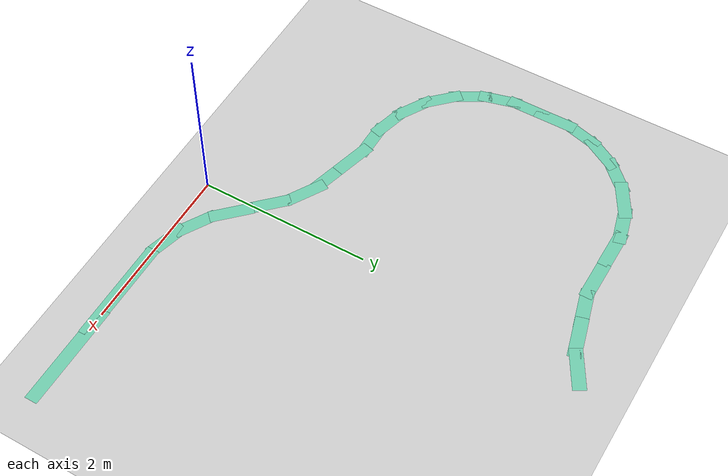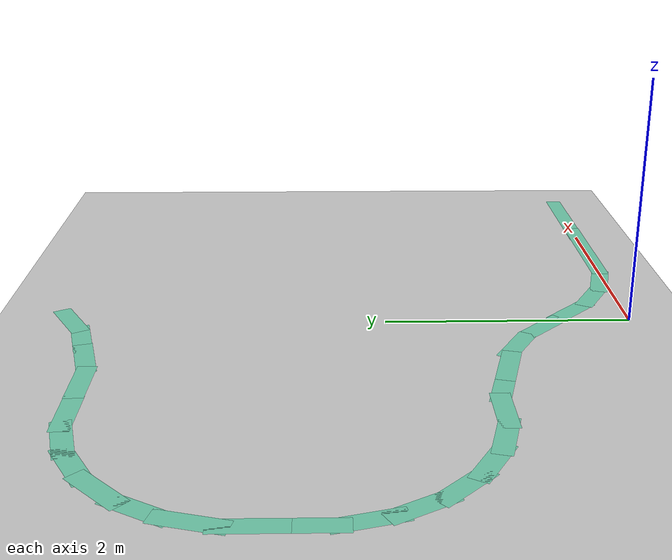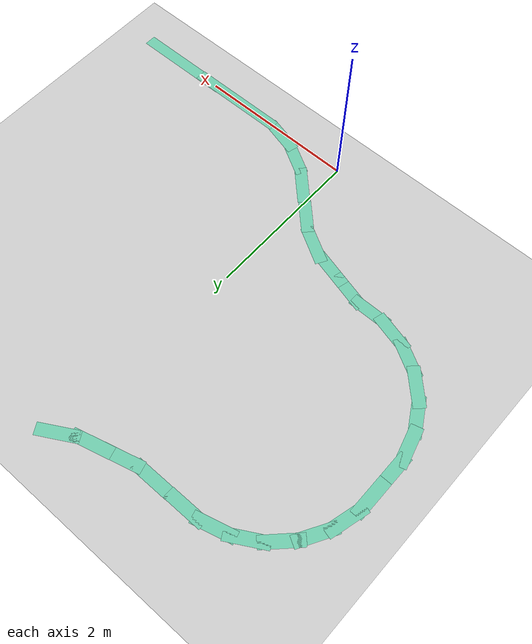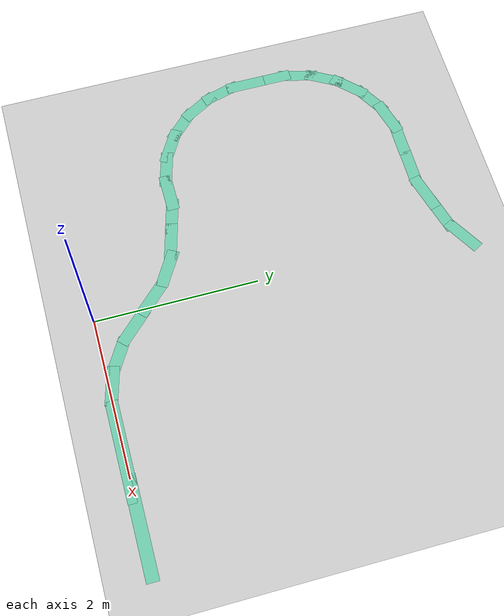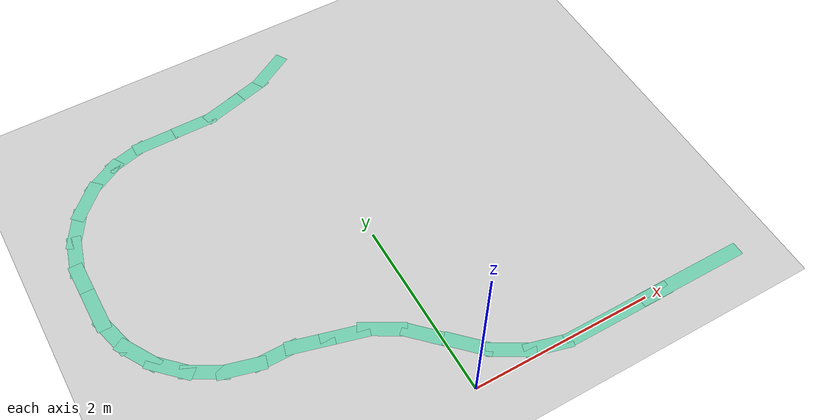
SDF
<sdf version="1.6">
 <world name="default">
  <model name="ground_plane">
   <static>1</static>
   <link name="link">
    <collision name="collision">
     <geometry><plane><normal>0 0 1</normal><size>100 100</size></plane></geometry>
     <surface><friction><ode><mu>100</mu><mu2>50</mu2></ode></friction></surface>
    </collision>
    <visual name="visual">
     <cast_shadows>0</cast_shadows>
     <geometry><plane><normal>0 0 1</normal><size>100 100</size></plane></geometry>
     <material>
      <script><uri>file://media/materials/scripts/gazebo.material</uri><name>Gazebo/Grey</name></script>
     </material>
    </visual>
   </link>
  </model>
  <model name="pomdp_path">
   <link name="Wall_100_clone_0">
    <pose>-8.04297 8.50296 0 0 -0 2.618</pose>
    <visual name="Wall_100_Visual">
     <pose>0 0 0.0001 0 -0 0</pose>
     <geometry><box><size>0.5 0.15 0</size></box></geometry>
     <material>
      <script><uri>file://media/materials/scripts/gazebo.material</uri><name>Gazebo/Grey</name></script>
      <ambient>0.435294 0.796078 0.67451 1</ambient>
      <shader type="pixel"/>
     </material>
     <meta><layer>0</layer></meta>
    </visual>
    <collision name="Wall_100_Collision">
     <pose>0 0 0.0001 0 -0 0</pose>
     <geometry><box><size>0.5 0.15 0</size></box></geometry>
     <surface>
      <friction>
       <ode><mu>1</mu><mu2>1</mu2><fdir1>0 0 0</fdir1><slip1>0</slip1><slip2>0</slip2></ode>
       <torsional>
        <coefficient>1</coefficient>
        <patch_radius>0</patch_radius>
        <surface_radius>0</surface_radius>
        <use_patch_radius>1</use_patch_radius>
        <ode><slip>0</slip></ode>
       </torsional>
      </friction>
      <bounce><restitution_coefficient>0</restitution_coefficient><threshold>1e+06</threshold></bounce>
      <contact>
       <collide_without_contact>0</collide_without_contact>
       <collide_without_contact_bitmask>1</collide_without_contact_bitmask>
       <collide_bitmask>1</collide_bitmask>
       <ode>
        <soft_cfm>0</soft_cfm>
        <soft_erp>0.2</soft_erp>
        <kp>1e+13</kp>
        <kd>1</kd>
        <max_vel>0.01</max_vel>
        <min_depth>0</min_depth>
       </ode>
       <bullet>
        <split_impulse>1</split_impulse>
        <split_impulse_penetration_threshold>-0.01</split_impulse_penetration_threshold>
        <soft_cfm>0</soft_cfm>
        <soft_erp>0.2</soft_erp>
        <kp>1e+13</kp>
        <kd>1</kd>
       </bullet>
      </contact>
     </surface>
    </collision>
   </link>
   <link name="Wall_101">
    <pose>-7.69538 8.38063 0 0 0 -0.261799</pose>
    <visual name="Wall_101_Visual">
     <pose>0 0 0.0001 0 -0 0</pose>
     <geometry><box><size>0.5 0.15 0</size></box></geometry>
     <material>
      <script><uri>file://media/materials/scripts/gazebo.material</uri><name>Gazebo/Grey</name></script>
      <ambient>0.435294 0.796078 0.67451 1</ambient>
      <shader type="pixel"/>
     </material>
     <meta><layer>0</layer></meta>
    </visual>
    <collision name="Wall_101_Collision">
     <pose>0 0 0.0001 0 -0 0</pose>
     <geometry><box><size>0.5 0.15 0</size></box></geometry>
     <surface>
      <friction>
       <ode><mu>1</mu><mu2>1</mu2><fdir1>0 0 0</fdir1><slip1>0</slip1><slip2>0</slip2></ode>
       <torsional>
        <coefficient>1</coefficient>
        <patch_radius>0</patch_radius>
        <surface_radius>0</surface_radius>
        <use_patch_radius>1</use_patch_radius>
        <ode><slip>0</slip></ode>
       </torsional>
      </friction>
      <bounce><restitution_coefficient>0</restitution_coefficient><threshold>1e+06</threshold></bounce>
      <contact>
       <collide_without_contact>0</collide_without_contact>
       <collide_without_contact_bitmask>1</collide_without_contact_bitmask>
       <collide_bitmask>1</collide_bitmask>
       <ode>
        <soft_cfm>0</soft_cfm>
        <soft_erp>0.2</soft_erp>
        <kp>1e+13</kp>
        <kd>1</kd>
        <max_vel>0.01</max_vel>
        <min_depth>0</min_depth>
       </ode>
       <bullet>
        <split_impulse>1</split_impulse>
        <split_impulse_penetration_threshold>-0.01</split_impulse_penetration_threshold>
        <soft_cfm>0</soft_cfm>
        <soft_erp>0.2</soft_erp>
        <kp>1e+13</kp>
        <kd>1</kd>
       </bullet>
      </contact>
     </surface>
    </collision>
   </link>
   <link name="Wall_102">
    <pose>-7.35731 8.29004 0 0 0 -0.261799</pose>
    <visual name="Wall_102_Visual">
     <pose>0 0 0.0001 0 -0 0</pose>
     <geometry><box><size>0.5 0.15 0</size></box></geometry>
     <material>
      <script><uri>file://media/materials/scripts/gazebo.material</uri><name>Gazebo/Grey</name></script>
      <ambient>0.435294 0.796078 0.67451 1</ambient>
      <shader type="pixel"/>
     </material>
     <meta><layer>0</layer></meta>
    </visual>
    <collision name="Wall_102_Collision">
     <pose>0 0 0.0001 0 -0 0</pose>
     <geometry><box><size>0.5 0.15 0</size></box></geometry>
     <surface>
      <friction>
       <ode><mu>1</mu><mu2>1</mu2><fdir1>0 0 0</fdir1><slip1>0</slip1><slip2>0</slip2></ode>
       <torsional>
        <coefficient>1</coefficient>
        <patch_radius>0</patch_radius>
        <surface_radius>0</surface_radius>
        <use_patch_radius>1</use_patch_radius>
        <ode><slip>0</slip></ode>
       </torsional>
      </friction>
      <bounce><restitution_coefficient>0</restitution_coefficient><threshold>1e+06</threshold></bounce>
      <contact>
       <collide_without_contact>0</collide_without_contact>
       <collide_without_contact_bitmask>1</collide_without_contact_bitmask>
       <collide_bitmask>1</collide_bitmask>
       <ode>
        <soft_cfm>0</soft_cfm>
        <soft_erp>0.2</soft_erp>
        <kp>1e+13</kp>
        <kd>1</kd>
        <max_vel>0.01</max_vel>
        <min_depth>0</min_depth>
       </ode>
       <bullet>
        <split_impulse>1</split_impulse>
        <split_impulse_penetration_threshold>-0.01</split_impulse_penetration_threshold>
        <soft_cfm>0</soft_cfm>
        <soft_erp>0.2</soft_erp>
        <kp>1e+13</kp>
        <kd>1</kd>
       </bullet>
      </contact>
     </surface>
    </collision>
   </link>
   <link name="Wall_103">
    <pose>-7.01327 8.24475 0 0 -0 0</pose>
    <visual name="Wall_103_Visual">
     <pose>0 0 0.0001 0 -0 0</pose>
     <geometry><box><size>0.5 0.15 0</size></box></geometry>
     <material>
      <script><uri>file://media/materials/scripts/gazebo.material</uri><name>Gazebo/Grey</name></script>
      <ambient>0.435294 0.796078 0.67451 1</ambient>
      <shader type="pixel"/>
     </material>
     <meta><layer>0</layer></meta>
    </visual>
    <collision name="Wall_103_Collision">
     <pose>0 0 0.0001 0 -0 0</pose>
     <geometry><box><size>0.5 0.15 0</size></box></geometry>
     <surface>
      <friction>
       <ode><mu>1</mu><mu2>1</mu2><fdir1>0 0 0</fdir1><slip1>0</slip1><slip2>0</slip2></ode>
       <torsional>
        <coefficient>1</coefficient>
        <patch_radius>0</patch_radius>
        <surface_radius>0</surface_radius>
        <use_patch_radius>1</use_patch_radius>
        <ode><slip>0</slip></ode>
       </torsional>
      </friction>
      <bounce><restitution_coefficient>0</restitution_coefficient><threshold>1e+06</threshold></bounce>
      <contact>
       <collide_without_contact>0</collide_without_contact>
       <collide_without_contact_bitmask>1</collide_without_contact_bitmask>
       <collide_bitmask>1</collide_bitmask>
       <ode>
        <soft_cfm>0</soft_cfm>
        <soft_erp>0.2</soft_erp>
        <kp>1e+13</kp>
        <kd>1</kd>
        <max_vel>0.01</max_vel>
        <min_depth>0</min_depth>
       </ode>
       <bullet>
        <split_impulse>1</split_impulse>
        <split_impulse_penetration_threshold>-0.01</split_impulse_penetration_threshold>
        <soft_cfm>0</soft_cfm>
        <soft_erp>0.2</soft_erp>
        <kp>1e+13</kp>
        <kd>1</kd>
       </bullet>
      </contact>
     </surface>
    </collision>
   </link>
   <link name="Wall_104">
    <pose>-6.66924 8.19946 0 0 0 -0.261799</pose>
    <visual name="Wall_104_Visual">
     <pose>0 0 0.0001 0 -0 0</pose>
     <geometry><box><size>0.5 0.15 0</size></box></geometry>
     <material>
      <script><uri>file://media/materials/scripts/gazebo.material</uri><name>Gazebo/Grey</name></script>
      <ambient>0.435294 0.796078 0.67451 1</ambient>
      <shader type="pixel"/>
     </material>
     <meta><layer>0</layer></meta>
    </visual>
    <collision name="Wall_104_Collision">
     <pose>0 0 0.0001 0 -0 0</pose>
     <geometry><box><size>0.5 0.15 0</size></box></geometry>
     <surface>
      <friction>
       <ode><mu>1</mu><mu2>1</mu2><fdir1>0 0 0</fdir1><slip1>0</slip1><slip2>0</slip2></ode>
       <torsional>
        <coefficient>1</coefficient>
        <patch_radius>0</patch_radius>
        <surface_radius>0</surface_radius>
        <use_patch_radius>1</use_patch_radius>
        <ode><slip>0</slip></ode>
       </torsional>
      </friction>
      <bounce><restitution_coefficient>0</restitution_coefficient><threshold>1e+06</threshold></bounce>
      <contact>
       <collide_without_contact>0</collide_without_contact>
       <collide_without_contact_bitmask>1</collide_without_contact_bitmask>
       <collide_bitmask>1</collide_bitmask>
       <ode>
        <soft_cfm>0</soft_cfm>
        <soft_erp>0.2</soft_erp>
        <kp>1e+13</kp>
        <kd>1</kd>
        <max_vel>0.01</max_vel>
        <min_depth>0</min_depth>
       </ode>
       <bullet>
        <split_impulse>1</split_impulse>
        <split_impulse_penetration_threshold>-0.01</split_impulse_penetration_threshold>
        <soft_cfm>0</soft_cfm>
        <soft_erp>0.2</soft_erp>
        <kp>1e+13</kp>
        <kd>1</kd>
       </bullet>
      </contact>
     </surface>
    </collision>
   </link>
   <link name="Wall_104_clone">
    <pose>-9.35694 9.46047 0 0 -0 2.8798</pose>
    <visual name="Wall_104_Visual">
     <pose>0 0 0.0001 0 -0 0</pose>
     <geometry><box><size>0.5 0.15 0</size></box></geometry>
     <material>
      <script><uri>file://media/materials/scripts/gazebo.material</uri><name>Gazebo/Grey</name></script>
      <ambient>0.435294 0.796078 0.67451 1</ambient>
      <shader type="pixel"/>
     </material>
     <meta><layer>0</layer></meta>
    </visual>
    <collision name="Wall_104_Collision">
     <pose>0 0 0.0001 0 -0 0</pose>
     <geometry><box><size>0.5 0.15 0</size></box></geometry>
     <surface>
      <friction>
       <ode><mu>1</mu><mu2>1</mu2><fdir1>0 0 0</fdir1><slip1>0</slip1><slip2>0</slip2></ode>
       <torsional>
        <coefficient>1</coefficient>
        <patch_radius>0</patch_radius>
        <surface_radius>0</surface_radius>
        <use_patch_radius>1</use_patch_radius>
        <ode><slip>0</slip></ode>
       </torsional>
      </friction>
      <bounce><restitution_coefficient>0</restitution_coefficient><threshold>1e+06</threshold></bounce>
      <contact>
       <collide_without_contact>0</collide_without_contact>
       <collide_without_contact_bitmask>1</collide_without_contact_bitmask>
       <collide_bitmask>1</collide_bitmask>
       <ode>
        <soft_cfm>0</soft_cfm>
        <soft_erp>0.2</soft_erp>
        <kp>1e+13</kp>
        <kd>1</kd>
        <max_vel>0.01</max_vel>
        <min_depth>0</min_depth>
       </ode>
       <bullet>
        <split_impulse>1</split_impulse>
        <split_impulse_penetration_threshold>-0.01</split_impulse_penetration_threshold>
        <soft_cfm>0</soft_cfm>
        <soft_erp>0.2</soft_erp>
        <kp>1e+13</kp>
        <kd>1</kd>
       </bullet>
      </contact>
     </surface>
    </collision>
   </link>
   <link name="Wall_105">
    <pose>-6.34865 8.06666 0 0 0 -0.523599</pose>
    <visual name="Wall_105_Visual">
     <pose>0 0 0.0001 0 -0 0</pose>
     <geometry><box><size>0.5 0.15 0</size></box></geometry>
     <material>
      <script><uri>file://media/materials/scripts/gazebo.material</uri><name>Gazebo/Grey</name></script>
      <ambient>0.435294 0.796078 0.67451 1</ambient>
      <shader type="pixel"/>
     </material>
     <meta><layer>0</layer></meta>
    </visual>
    <collision name="Wall_105_Collision">
     <pose>0 0 0.0001 0 -0 0</pose>
     <geometry><box><size>0.5 0.15 0</size></box></geometry>
     <surface>
      <friction>
       <ode><mu>1</mu><mu2>1</mu2><fdir1>0 0 0</fdir1><slip1>0</slip1><slip2>0</slip2></ode>
       <torsional>
        <coefficient>1</coefficient>
        <patch_radius>0</patch_radius>
        <surface_radius>0</surface_radius>
        <use_patch_radius>1</use_patch_radius>
        <ode><slip>0</slip></ode>
       </torsional>
      </friction>
      <bounce><restitution_coefficient>0</restitution_coefficient><threshold>1e+06</threshold></bounce>
      <contact>
       <collide_without_contact>0</collide_without_contact>
       <collide_without_contact_bitmask>1</collide_without_contact_bitmask>
       <collide_bitmask>1</collide_bitmask>
       <ode>
        <soft_cfm>0</soft_cfm>
        <soft_erp>0.2</soft_erp>
        <kp>1e+13</kp>
        <kd>1</kd>
        <max_vel>0.01</max_vel>
        <min_depth>0</min_depth>
       </ode>
       <bullet>
        <split_impulse>1</split_impulse>
        <split_impulse_penetration_threshold>-0.01</split_impulse_penetration_threshold>
        <soft_cfm>0</soft_cfm>
        <soft_erp>0.2</soft_erp>
        <kp>1e+13</kp>
        <kd>1</kd>
       </bullet>
      </contact>
     </surface>
    </collision>
   </link>
   <link name="Wall_105_clone">
    <pose>-9.01884 9.31716 0 0 -0 2.618</pose>
    <visual name="Wall_105_Visual">
     <pose>0 0 0.0001 0 -0 0</pose>
     <geometry><box><size>0.5 0.15 0</size></box></geometry>
     <material>
      <script><uri>file://media/materials/scripts/gazebo.material</uri><name>Gazebo/Grey</name></script>
      <ambient>0.435294 0.796078 0.67451 1</ambient>
      <shader type="pixel"/>
     </material>
     <meta><layer>0</layer></meta>
    </visual>
    <collision name="Wall_105_Collision">
     <pose>0 0 0.0001 0 -0 0</pose>
     <geometry><box><size>0.5 0.15 0</size></box></geometry>
     <surface>
      <friction>
       <ode><mu>1</mu><mu2>1</mu2><fdir1>0 0 0</fdir1><slip1>0</slip1><slip2>0</slip2></ode>
       <torsional>
        <coefficient>1</coefficient>
        <patch_radius>0</patch_radius>
        <surface_radius>0</surface_radius>
        <use_patch_radius>1</use_patch_radius>
        <ode><slip>0</slip></ode>
       </torsional>
      </friction>
      <bounce><restitution_coefficient>0</restitution_coefficient><threshold>1e+06</threshold></bounce>
      <contact>
       <collide_without_contact>0</collide_without_contact>
       <collide_without_contact_bitmask>1</collide_without_contact_bitmask>
       <collide_bitmask>1</collide_bitmask>
       <ode>
        <soft_cfm>0</soft_cfm>
        <soft_erp>0.2</soft_erp>
        <kp>1e+13</kp>
        <kd>1</kd>
        <max_vel>0.01</max_vel>
        <min_depth>0</min_depth>
       </ode>
       <bullet>
        <split_impulse>1</split_impulse>
        <split_impulse_penetration_threshold>-0.01</split_impulse_penetration_threshold>
        <soft_cfm>0</soft_cfm>
        <soft_erp>0.2</soft_erp>
        <kp>1e+13</kp>
        <kd>1</kd>
       </bullet>
      </contact>
     </surface>
    </collision>
   </link>
   <link name="Wall_107">
    <pose>-6.07335 7.85542 0 0 0 -0.785398</pose>
    <visual name="Wall_107_Visual">
     <pose>0 0 0.0001 0 -0 0</pose>
     <geometry><box><size>0.5 0.15 0</size></box></geometry>
     <material>
      <script><uri>file://media/materials/scripts/gazebo.material</uri><name>Gazebo/Grey</name></script>
      <ambient>0.435294 0.796078 0.67451 1</ambient>
      <shader type="pixel"/>
     </material>
     <meta><layer>0</layer></meta>
    </visual>
    <collision name="Wall_107_Collision">
     <pose>0 0 0.0001 0 -0 0</pose>
     <geometry><box><size>0.5 0.15 0</size></box></geometry>
     <surface>
      <friction>
       <ode><mu>1</mu><mu2>1</mu2><fdir1>0 0 0</fdir1><slip1>0</slip1><slip2>0</slip2></ode>
       <torsional>
        <coefficient>1</coefficient>
        <patch_radius>0</patch_radius>
        <surface_radius>0</surface_radius>
        <use_patch_radius>1</use_patch_radius>
        <ode><slip>0</slip></ode>
       </torsional>
      </friction>
      <bounce><restitution_coefficient>0</restitution_coefficient><threshold>1e+06</threshold></bounce>
      <contact>
       <collide_without_contact>0</collide_without_contact>
       <collide_without_contact_bitmask>1</collide_without_contact_bitmask>
       <collide_bitmask>1</collide_bitmask>
       <ode>
        <soft_cfm>0</soft_cfm>
        <soft_erp>0.2</soft_erp>
        <kp>1e+13</kp>
        <kd>1</kd>
        <max_vel>0.01</max_vel>
        <min_depth>0</min_depth>
       </ode>
       <bullet>
        <split_impulse>1</split_impulse>
        <split_impulse_penetration_threshold>-0.01</split_impulse_penetration_threshold>
        <soft_cfm>0</soft_cfm>
        <soft_erp>0.2</soft_erp>
        <kp>1e+13</kp>
        <kd>1</kd>
       </bullet>
      </contact>
     </surface>
    </collision>
   </link>
   <link name="Wall_107_clone">
    <pose>-8.69042 9.06213 0 0 -0 2.3562</pose>
    <visual name="Wall_107_Visual">
     <pose>0 0 0.0001 0 -0 0</pose>
     <geometry><box><size>0.5 0.15 0</size></box></geometry>
     <material>
      <script><uri>file://media/materials/scripts/gazebo.material</uri><name>Gazebo/Grey</name></script>
      <ambient>0.435294 0.796078 0.67451 1</ambient>
      <shader type="pixel"/>
     </material>
     <meta><layer>0</layer></meta>
    </visual>
    <collision name="Wall_107_Collision">
     <pose>0 0 0.0001 0 -0 0</pose>
     <geometry><box><size>0.5 0.15 0</size></box></geometry>
     <surface>
      <friction>
       <ode><mu>1</mu><mu2>1</mu2><fdir1>0 0 0</fdir1><slip1>0</slip1><slip2>0</slip2></ode>
       <torsional>
        <coefficient>1</coefficient>
        <patch_radius>0</patch_radius>
        <surface_radius>0</surface_radius>
        <use_patch_radius>1</use_patch_radius>
        <ode><slip>0</slip></ode>
       </torsional>
      </friction>
      <bounce><restitution_coefficient>0</restitution_coefficient><threshold>1e+06</threshold></bounce>
      <contact>
       <collide_without_contact>0</collide_without_contact>
       <collide_without_contact_bitmask>1</collide_without_contact_bitmask>
       <collide_bitmask>1</collide_bitmask>
       <ode>
        <soft_cfm>0</soft_cfm>
        <soft_erp>0.2</soft_erp>
        <kp>1e+13</kp>
        <kd>1</kd>
        <max_vel>0.01</max_vel>
        <min_depth>0</min_depth>
       </ode>
       <bullet>
        <split_impulse>1</split_impulse>
        <split_impulse_penetration_threshold>-0.01</split_impulse_penetration_threshold>
        <soft_cfm>0</soft_cfm>
        <soft_erp>0.2</soft_erp>
        <kp>1e+13</kp>
        <kd>1</kd>
       </bullet>
      </contact>
     </surface>
    </collision>
   </link>
   <link name="Wall_107_clone_0">
    <pose>-8.38692 8.76886 0 0 -0 2.3562</pose>
    <visual name="Wall_107_Visual">
     <pose>0 0 0.0001 0 -0 0</pose>
     <geometry><box><size>0.5 0.15 0</size></box></geometry>
     <material>
      <script><uri>file://media/materials/scripts/gazebo.material</uri><name>Gazebo/Grey</name></script>
      <ambient>0.435294 0.796078 0.67451 1</ambient>
      <shader type="pixel"/>
     </material>
     <meta><layer>0</layer></meta>
    </visual>
    <collision name="Wall_107_Collision">
     <pose>0 0 0.0001 0 -0 0</pose>
     <geometry><box><size>0.5 0.15 0</size></box></geometry>
     <surface>
      <friction>
       <ode><mu>1</mu><mu2>1</mu2><fdir1>0 0 0</fdir1><slip1>0</slip1><slip2>0</slip2></ode>
       <torsional>
        <coefficient>1</coefficient>
        <patch_radius>0</patch_radius>
        <surface_radius>0</surface_radius>
        <use_patch_radius>1</use_patch_radius>
        <ode><slip>0</slip></ode>
       </torsional>
      </friction>
      <bounce><restitution_coefficient>0</restitution_coefficient><threshold>1e+06</threshold></bounce>
      <contact>
       <collide_without_contact>0</collide_without_contact>
       <collide_without_contact_bitmask>1</collide_without_contact_bitmask>
       <collide_bitmask>1</collide_bitmask>
       <ode>
        <soft_cfm>0</soft_cfm>
        <soft_erp>0.2</soft_erp>
        <kp>1e+13</kp>
        <kd>1</kd>
        <max_vel>0.01</max_vel>
        <min_depth>0</min_depth>
       </ode>
       <bullet>
        <split_impulse>1</split_impulse>
        <split_impulse_penetration_threshold>-0.01</split_impulse_penetration_threshold>
        <soft_cfm>0</soft_cfm>
        <soft_erp>0.2</soft_erp>
        <kp>1e+13</kp>
        <kd>1</kd>
       </bullet>
      </contact>
     </surface>
    </collision>
   </link>
   <link name="Wall_108">
    <pose>-5.8621 7.58012 0 0 0 -1.0472</pose>
    <visual name="Wall_108_Visual">
     <pose>0 0 0.0001 0 -0 0</pose>
     <geometry><box><size>0.5 0.15 0</size></box></geometry>
     <material>
      <script><uri>file://media/materials/scripts/gazebo.material</uri><name>Gazebo/Grey</name></script>
      <ambient>0.435294 0.796078 0.67451 1</ambient>
      <shader type="pixel"/>
     </material>
     <meta><layer>0</layer></meta>
    </visual>
    <collision name="Wall_108_Collision">
     <pose>0 0 0.0001 0 -0 0</pose>
     <geometry><box><size>0.5 0.15 0</size></box></geometry>
     <surface>
      <friction>
       <ode><mu>1</mu><mu2>1</mu2><fdir1>0 0 0</fdir1><slip1>0</slip1><slip2>0</slip2></ode>
       <torsional>
        <coefficient>1</coefficient>
        <patch_radius>0</patch_radius>
        <surface_radius>0</surface_radius>
        <use_patch_radius>1</use_patch_radius>
        <ode><slip>0</slip></ode>
       </torsional>
      </friction>
      <bounce><restitution_coefficient>0</restitution_coefficient><threshold>1e+06</threshold></bounce>
      <contact>
       <collide_without_contact>0</collide_without_contact>
       <collide_without_contact_bitmask>1</collide_without_contact_bitmask>
       <collide_bitmask>1</collide_bitmask>
       <ode>
        <soft_cfm>0</soft_cfm>
        <soft_erp>0.2</soft_erp>
        <kp>1e+13</kp>
        <kd>1</kd>
        <max_vel>0.01</max_vel>
        <min_depth>0</min_depth>
       </ode>
       <bullet>
        <split_impulse>1</split_impulse>
        <split_impulse_penetration_threshold>-0.01</split_impulse_penetration_threshold>
        <soft_cfm>0</soft_cfm>
        <soft_erp>0.2</soft_erp>
        <kp>1e+13</kp>
        <kd>1</kd>
       </bullet>
      </contact>
     </surface>
    </collision>
   </link>
   <link name="Wall_109">
    <pose>-5.72931 7.25953 0 0 0 -1.309</pose>
    <visual name="Wall_109_Visual">
     <pose>0 0 0.0001 0 -0 0</pose>
     <geometry><box><size>0.5 0.15 0</size></box></geometry>
     <material>
      <script><uri>file://media/materials/scripts/gazebo.material</uri><name>Gazebo/Grey</name></script>
      <ambient>0.435294 0.796078 0.67451 1</ambient>
      <shader type="pixel"/>
     </material>
     <meta><layer>0</layer></meta>
    </visual>
    <collision name="Wall_109_Collision">
     <pose>0 0 0.0001 0 -0 0</pose>
     <geometry><box><size>0.5 0.15 0</size></box></geometry>
     <surface>
      <friction>
       <ode><mu>1</mu><mu2>1</mu2><fdir1>0 0 0</fdir1><slip1>0</slip1><slip2>0</slip2></ode>
       <torsional>
        <coefficient>1</coefficient>
        <patch_radius>0</patch_radius>
        <surface_radius>0</surface_radius>
        <use_patch_radius>1</use_patch_radius>
        <ode><slip>0</slip></ode>
       </torsional>
      </friction>
      <bounce><restitution_coefficient>0</restitution_coefficient><threshold>1e+06</threshold></bounce>
      <contact>
       <collide_without_contact>0</collide_without_contact>
       <collide_without_contact_bitmask>1</collide_without_contact_bitmask>
       <collide_bitmask>1</collide_bitmask>
       <ode>
        <soft_cfm>0</soft_cfm>
        <soft_erp>0.2</soft_erp>
        <kp>1e+13</kp>
        <kd>1</kd>
        <max_vel>0.01</max_vel>
        <min_depth>0</min_depth>
       </ode>
       <bullet>
        <split_impulse>1</split_impulse>
        <split_impulse_penetration_threshold>-0.01</split_impulse_penetration_threshold>
        <soft_cfm>0</soft_cfm>
        <soft_erp>0.2</soft_erp>
        <kp>1e+13</kp>
        <kd>1</kd>
       </bullet>
      </contact>
     </surface>
    </collision>
   </link>
   <link name="Wall_110">
    <pose>-5.68402 6.91549 0 0 0 -1.5708</pose>
    <visual name="Wall_110_Visual">
     <pose>0 0 0.0001 0 -0 0</pose>
     <geometry><box><size>0.5 0.15 0</size></box></geometry>
     <material>
      <script><uri>file://media/materials/scripts/gazebo.material</uri><name>Gazebo/Grey</name></script>
      <ambient>0.435294 0.796078 0.67451 1</ambient>
      <shader type="pixel"/>
     </material>
     <meta><layer>0</layer></meta>
    </visual>
    <collision name="Wall_110_Collision">
     <pose>0 0 0.0001 0 -0 0</pose>
     <geometry><box><size>0.5 0.15 0</size></box></geometry>
     <surface>
      <friction>
       <ode><mu>1</mu><mu2>1</mu2><fdir1>0 0 0</fdir1><slip1>0</slip1><slip2>0</slip2></ode>
       <torsional>
        <coefficient>1</coefficient>
        <patch_radius>0</patch_radius>
        <surface_radius>0</surface_radius>
        <use_patch_radius>1</use_patch_radius>
        <ode><slip>0</slip></ode>
       </torsional>
      </friction>
      <bounce><restitution_coefficient>0</restitution_coefficient><threshold>1e+06</threshold></bounce>
      <contact>
       <collide_without_contact>0</collide_without_contact>
       <collide_without_contact_bitmask>1</collide_without_contact_bitmask>
       <collide_bitmask>1</collide_bitmask>
       <ode>
        <soft_cfm>0</soft_cfm>
        <soft_erp>0.2</soft_erp>
        <kp>1e+13</kp>
        <kd>1</kd>
        <max_vel>0.01</max_vel>
        <min_depth>0</min_depth>
       </ode>
       <bullet>
        <split_impulse>1</split_impulse>
        <split_impulse_penetration_threshold>-0.01</split_impulse_penetration_threshold>
        <soft_cfm>0</soft_cfm>
        <soft_erp>0.2</soft_erp>
        <kp>1e+13</kp>
        <kd>1</kd>
       </bullet>
      </contact>
     </surface>
    </collision>
   </link>
   <link name="Wall_112">
    <pose>-5.68402 6.56549 0 0 0 -1.5708</pose>
    <visual name="Wall_112_Visual">
     <pose>0 0 0.0001 0 -0 0</pose>
     <geometry><box><size>0.5 0.15 0</size></box></geometry>
     <material>
      <script><uri>file://media/materials/scripts/gazebo.material</uri><name>Gazebo/Grey</name></script>
      <ambient>0.435294 0.796078 0.67451 1</ambient>
      <shader type="pixel"/>
     </material>
     <meta><layer>0</layer></meta>
    </visual>
    <collision name="Wall_112_Collision">
     <pose>0 0 0.0001 0 -0 0</pose>
     <geometry><box><size>0.5 0.15 0</size></box></geometry>
     <surface>
      <friction>
       <ode><mu>1</mu><mu2>1</mu2><fdir1>0 0 0</fdir1><slip1>0</slip1><slip2>0</slip2></ode>
       <torsional>
        <coefficient>1</coefficient>
        <patch_radius>0</patch_radius>
        <surface_radius>0</surface_radius>
        <use_patch_radius>1</use_patch_radius>
        <ode><slip>0</slip></ode>
       </torsional>
      </friction>
      <bounce><restitution_coefficient>0</restitution_coefficient><threshold>1e+06</threshold></bounce>
      <contact>
       <collide_without_contact>0</collide_without_contact>
       <collide_without_contact_bitmask>1</collide_without_contact_bitmask>
       <collide_bitmask>1</collide_bitmask>
       <ode>
        <soft_cfm>0</soft_cfm>
        <soft_erp>0.2</soft_erp>
        <kp>1e+13</kp>
        <kd>1</kd>
        <max_vel>0.01</max_vel>
        <min_depth>0</min_depth>
       </ode>
       <bullet>
        <split_impulse>1</split_impulse>
        <split_impulse_penetration_threshold>-0.01</split_impulse_penetration_threshold>
        <soft_cfm>0</soft_cfm>
        <soft_erp>0.2</soft_erp>
        <kp>1e+13</kp>
        <kd>1</kd>
       </bullet>
      </contact>
     </surface>
    </collision>
   </link>
   <link name="Wall_113">
    <pose>-5.72931 6.22145 0 0 0 -1.8326</pose>
    <visual name="Wall_113_Visual">
     <pose>0 0 0.0001 0 -0 0</pose>
     <geometry><box><size>0.5 0.15 0</size></box></geometry>
     <material>
      <script><uri>file://media/materials/scripts/gazebo.material</uri><name>Gazebo/Grey</name></script>
      <ambient>0.435294 0.796078 0.67451 1</ambient>
      <shader type="pixel"/>
     </material>
     <meta><layer>0</layer></meta>
    </visual>
    <collision name="Wall_113_Collision">
     <pose>0 0 0.0001 0 -0 0</pose>
     <geometry><box><size>0.5 0.15 0</size></box></geometry>
     <surface>
      <friction>
       <ode><mu>1</mu><mu2>1</mu2><fdir1>0 0 0</fdir1><slip1>0</slip1><slip2>0</slip2></ode>
       <torsional>
        <coefficient>1</coefficient>
        <patch_radius>0</patch_radius>
        <surface_radius>0</surface_radius>
        <use_patch_radius>1</use_patch_radius>
        <ode><slip>0</slip></ode>
       </torsional>
      </friction>
      <bounce><restitution_coefficient>0</restitution_coefficient><threshold>1e+06</threshold></bounce>
      <contact>
       <collide_without_contact>0</collide_without_contact>
       <collide_without_contact_bitmask>1</collide_without_contact_bitmask>
       <collide_bitmask>1</collide_bitmask>
       <ode>
        <soft_cfm>0</soft_cfm>
        <soft_erp>0.2</soft_erp>
        <kp>1e+13</kp>
        <kd>1</kd>
        <max_vel>0.01</max_vel>
        <min_depth>0</min_depth>
       </ode>
       <bullet>
        <split_impulse>1</split_impulse>
        <split_impulse_penetration_threshold>-0.01</split_impulse_penetration_threshold>
        <soft_cfm>0</soft_cfm>
        <soft_erp>0.2</soft_erp>
        <kp>1e+13</kp>
        <kd>1</kd>
       </bullet>
      </contact>
     </surface>
    </collision>
   </link>
   <link name="Wall_114">
    <pose>-5.8621 5.90086 0 0 0 -2.0944</pose>
    <visual name="Wall_114_Visual">
     <pose>0 0 0.0001 0 -0 0</pose>
     <geometry><box><size>0.5 0.15 0</size></box></geometry>
     <material>
      <script><uri>file://media/materials/scripts/gazebo.material</uri><name>Gazebo/Grey</name></script>
      <ambient>0.435294 0.796078 0.67451 1</ambient>
      <shader type="pixel"/>
     </material>
     <meta><layer>0</layer></meta>
    </visual>
    <collision name="Wall_114_Collision">
     <pose>0 0 0.0001 0 -0 0</pose>
     <geometry><box><size>0.5 0.15 0</size></box></geometry>
     <surface>
      <friction>
       <ode><mu>1</mu><mu2>1</mu2><fdir1>0 0 0</fdir1><slip1>0</slip1><slip2>0</slip2></ode>
       <torsional>
        <coefficient>1</coefficient>
        <patch_radius>0</patch_radius>
        <surface_radius>0</surface_radius>
        <use_patch_radius>1</use_patch_radius>
        <ode><slip>0</slip></ode>
       </torsional>
      </friction>
      <bounce><restitution_coefficient>0</restitution_coefficient><threshold>1e+06</threshold></bounce>
      <contact>
       <collide_without_contact>0</collide_without_contact>
       <collide_without_contact_bitmask>1</collide_without_contact_bitmask>
       <collide_bitmask>1</collide_bitmask>
       <ode>
        <soft_cfm>0</soft_cfm>
        <soft_erp>0.2</soft_erp>
        <kp>1e+13</kp>
        <kd>1</kd>
        <max_vel>0.01</max_vel>
        <min_depth>0</min_depth>
       </ode>
       <bullet>
        <split_impulse>1</split_impulse>
        <split_impulse_penetration_threshold>-0.01</split_impulse_penetration_threshold>
        <soft_cfm>0</soft_cfm>
        <soft_erp>0.2</soft_erp>
        <kp>1e+13</kp>
        <kd>1</kd>
       </bullet>
      </contact>
     </surface>
    </collision>
   </link>
   <link name="Wall_115">
    <pose>-6.07335 5.62556 0 0 0 -2.35619</pose>
    <visual name="Wall_115_Visual">
     <pose>0 0 0.0001 0 -0 0</pose>
     <geometry><box><size>0.5 0.15 0</size></box></geometry>
     <material>
      <script><uri>file://media/materials/scripts/gazebo.material</uri><name>Gazebo/Grey</name></script>
      <ambient>0.435294 0.796078 0.67451 1</ambient>
      <shader type="pixel"/>
     </material>
     <meta><layer>0</layer></meta>
    </visual>
    <collision name="Wall_115_Collision">
     <pose>0 0 0.0001 0 -0 0</pose>
     <geometry><box><size>0.5 0.15 0</size></box></geometry>
     <surface>
      <friction>
       <ode><mu>1</mu><mu2>1</mu2><fdir1>0 0 0</fdir1><slip1>0</slip1><slip2>0</slip2></ode>
       <torsional>
        <coefficient>1</coefficient>
        <patch_radius>0</patch_radius>
        <surface_radius>0</surface_radius>
        <use_patch_radius>1</use_patch_radius>
        <ode><slip>0</slip></ode>
       </torsional>
      </friction>
      <bounce><restitution_coefficient>0</restitution_coefficient><threshold>1e+06</threshold></bounce>
      <contact>
       <collide_without_contact>0</collide_without_contact>
       <collide_without_contact_bitmask>1</collide_without_contact_bitmask>
       <collide_bitmask>1</collide_bitmask>
       <ode>
        <soft_cfm>0</soft_cfm>
        <soft_erp>0.2</soft_erp>
        <kp>1e+13</kp>
        <kd>1</kd>
        <max_vel>0.01</max_vel>
        <min_depth>0</min_depth>
       </ode>
       <bullet>
        <split_impulse>1</split_impulse>
        <split_impulse_penetration_threshold>-0.01</split_impulse_penetration_threshold>
        <soft_cfm>0</soft_cfm>
        <soft_erp>0.2</soft_erp>
        <kp>1e+13</kp>
        <kd>1</kd>
       </bullet>
      </contact>
     </surface>
    </collision>
   </link>
   <link name="Wall_116">
    <pose>-6.34865 5.41432 0 0 0 -2.61799</pose>
    <visual name="Wall_116_Visual">
     <pose>0 0 0.0001 0 -0 0</pose>
     <geometry><box><size>0.5 0.15 0</size></box></geometry>
     <material>
      <script><uri>file://media/materials/scripts/gazebo.material</uri><name>Gazebo/Grey</name></script>
      <ambient>0.435294 0.796078 0.67451 1</ambient>
      <shader type="pixel"/>
     </material>
     <meta><layer>0</layer></meta>
    </visual>
    <collision name="Wall_116_Collision">
     <pose>0 0 0.0001 0 -0 0</pose>
     <geometry><box><size>0.5 0.15 0</size></box></geometry>
     <surface>
      <friction>
       <ode><mu>1</mu><mu2>1</mu2><fdir1>0 0 0</fdir1><slip1>0</slip1><slip2>0</slip2></ode>
       <torsional>
        <coefficient>1</coefficient>
        <patch_radius>0</patch_radius>
        <surface_radius>0</surface_radius>
        <use_patch_radius>1</use_patch_radius>
        <ode><slip>0</slip></ode>
       </torsional>
      </friction>
      <bounce><restitution_coefficient>0</restitution_coefficient><threshold>1e+06</threshold></bounce>
      <contact>
       <collide_without_contact>0</collide_without_contact>
       <collide_without_contact_bitmask>1</collide_without_contact_bitmask>
       <collide_bitmask>1</collide_bitmask>
       <ode>
        <soft_cfm>0</soft_cfm>
        <soft_erp>0.2</soft_erp>
        <kp>1e+13</kp>
        <kd>1</kd>
        <max_vel>0.01</max_vel>
        <min_depth>0</min_depth>
       </ode>
       <bullet>
        <split_impulse>1</split_impulse>
        <split_impulse_penetration_threshold>-0.01</split_impulse_penetration_threshold>
        <soft_cfm>0</soft_cfm>
        <soft_erp>0.2</soft_erp>
        <kp>1e+13</kp>
        <kd>1</kd>
       </bullet>
      </contact>
     </surface>
    </collision>
   </link>
   <link name="Wall_117">
    <pose>-6.66924 5.28153 0 0 0 -2.87979</pose>
    <visual name="Wall_117_Visual">
     <pose>0 0 0.0001 0 -0 0</pose>
     <geometry><box><size>0.5 0.15 0</size></box></geometry>
     <material>
      <script><uri>file://media/materials/scripts/gazebo.material</uri><name>Gazebo/Grey</name></script>
      <ambient>0.435294 0.796078 0.67451 1</ambient>
      <shader type="pixel"/>
     </material>
     <meta><layer>0</layer></meta>
    </visual>
    <collision name="Wall_117_Collision">
     <pose>0 0 0.0001 0 -0 0</pose>
     <geometry><box><size>0.5 0.15 0</size></box></geometry>
     <surface>
      <friction>
       <ode><mu>1</mu><mu2>1</mu2><fdir1>0 0 0</fdir1><slip1>0</slip1><slip2>0</slip2></ode>
       <torsional>
        <coefficient>1</coefficient>
        <patch_radius>0</patch_radius>
        <surface_radius>0</surface_radius>
        <use_patch_radius>1</use_patch_radius>
        <ode><slip>0</slip></ode>
       </torsional>
      </friction>
      <bounce><restitution_coefficient>0</restitution_coefficient><threshold>1e+06</threshold></bounce>
      <contact>
       <collide_without_contact>0</collide_without_contact>
       <collide_without_contact_bitmask>1</collide_without_contact_bitmask>
       <collide_bitmask>1</collide_bitmask>
       <ode>
        <soft_cfm>0</soft_cfm>
        <soft_erp>0.2</soft_erp>
        <kp>1e+13</kp>
        <kd>1</kd>
        <max_vel>0.01</max_vel>
        <min_depth>0</min_depth>
       </ode>
       <bullet>
        <split_impulse>1</split_impulse>
        <split_impulse_penetration_threshold>-0.01</split_impulse_penetration_threshold>
        <soft_cfm>0</soft_cfm>
        <soft_erp>0.2</soft_erp>
        <kp>1e+13</kp>
        <kd>1</kd>
       </bullet>
      </contact>
     </surface>
    </collision>
   </link>
   <link name="Wall_118">
    <pose>-7.01327 5.23623 0 0 -0 3.14159</pose>
    <visual name="Wall_118_Visual">
     <pose>0 0 0.0001 0 -0 0</pose>
     <geometry><box><size>0.5 0.15 0</size></box></geometry>
     <material>
      <script><uri>file://media/materials/scripts/gazebo.material</uri><name>Gazebo/Grey</name></script>
      <ambient>0.435294 0.796078 0.67451 1</ambient>
      <shader type="pixel"/>
     </material>
     <meta><layer>0</layer></meta>
    </visual>
    <collision name="Wall_118_Collision">
     <pose>0 0 0.0001 0 -0 0</pose>
     <geometry><box><size>0.5 0.15 0</size></box></geometry>
     <surface>
      <friction>
       <ode><mu>1</mu><mu2>1</mu2><fdir1>0 0 0</fdir1><slip1>0</slip1><slip2>0</slip2></ode>
       <torsional>
        <coefficient>1</coefficient>
        <patch_radius>0</patch_radius>
        <surface_radius>0</surface_radius>
        <use_patch_radius>1</use_patch_radius>
        <ode><slip>0</slip></ode>
       </torsional>
      </friction>
      <bounce><restitution_coefficient>0</restitution_coefficient><threshold>1e+06</threshold></bounce>
      <contact>
       <collide_without_contact>0</collide_without_contact>
       <collide_without_contact_bitmask>1</collide_without_contact_bitmask>
       <collide_bitmask>1</collide_bitmask>
       <ode>
        <soft_cfm>0</soft_cfm>
        <soft_erp>0.2</soft_erp>
        <kp>1e+13</kp>
        <kd>1</kd>
        <max_vel>0.01</max_vel>
        <min_depth>0</min_depth>
       </ode>
       <bullet>
        <split_impulse>1</split_impulse>
        <split_impulse_penetration_threshold>-0.01</split_impulse_penetration_threshold>
        <soft_cfm>0</soft_cfm>
        <soft_erp>0.2</soft_erp>
        <kp>1e+13</kp>
        <kd>1</kd>
       </bullet>
      </contact>
     </surface>
    </collision>
   </link>
   <link name="Wall_118_clone">
    <pose>-7.48069 5.23328 0 0 -0 1e-06</pose>
    <visual name="Wall_118_Visual">
     <pose>0 0 0.0001 0 -0 0</pose>
     <geometry><box><size>0.5 0.15 0</size></box></geometry>
     <material>
      <script><uri>file://media/materials/scripts/gazebo.material</uri><name>Gazebo/Grey</name></script>
      <ambient>0.435294 0.796078 0.67451 1</ambient>
      <shader type="pixel"/>
     </material>
     <meta><layer>0</layer></meta>
    </visual>
    <collision name="Wall_118_Collision">
     <pose>0 0 0.0001 0 -0 0</pose>
     <geometry><box><size>0.5 0.15 0</size></box></geometry>
     <surface>
      <friction>
       <ode><mu>1</mu><mu2>1</mu2><fdir1>0 0 0</fdir1><slip1>0</slip1><slip2>0</slip2></ode>
       <torsional>
        <coefficient>1</coefficient>
        <patch_radius>0</patch_radius>
        <surface_radius>0</surface_radius>
        <use_patch_radius>1</use_patch_radius>
        <ode><slip>0</slip></ode>
       </torsional>
      </friction>
      <bounce><restitution_coefficient>0</restitution_coefficient><threshold>1e+06</threshold></bounce>
      <contact>
       <collide_without_contact>0</collide_without_contact>
       <collide_without_contact_bitmask>1</collide_without_contact_bitmask>
       <collide_bitmask>1</collide_bitmask>
       <ode>
        <soft_cfm>0</soft_cfm>
        <soft_erp>0.2</soft_erp>
        <kp>1e+13</kp>
        <kd>1</kd>
        <max_vel>0.01</max_vel>
        <min_depth>0</min_depth>
       </ode>
       <bullet>
        <split_impulse>1</split_impulse>
        <split_impulse_penetration_threshold>-0.01</split_impulse_penetration_threshold>
        <soft_cfm>0</soft_cfm>
        <soft_erp>0.2</soft_erp>
        <kp>1e+13</kp>
        <kd>1</kd>
       </bullet>
      </contact>
     </surface>
    </collision>
   </link>
   <link name="Wall_124_clone_clone_clone_clone">
    <pose>-7.86869 5.18057 0 0 0 -2.87977</pose>
    <visual name="Wall_124_Visual">
     <pose>0 0 0.0001 0 -0 0</pose>
     <geometry><box><size>0.5 0.15 0</size></box></geometry>
     <material>
      <script><uri>file://media/materials/scripts/gazebo.material</uri><name>Gazebo/Grey</name></script>
      <ambient>0.435294 0.796078 0.67451 1</ambient>
      <shader type="pixel"/>
     </material>
     <meta><layer>0</layer></meta>
    </visual>
    <collision name="Wall_124_Collision">
     <pose>0 0 0.0001 0 -0 0</pose>
     <geometry><box><size>0.5 0.15 0</size></box></geometry>
     <surface>
      <friction>
       <ode><mu>1</mu><mu2>1</mu2><fdir1>0 0 0</fdir1><slip1>0</slip1><slip2>0</slip2></ode>
       <torsional>
        <coefficient>1</coefficient>
        <patch_radius>0</patch_radius>
        <surface_radius>0</surface_radius>
        <use_patch_radius>1</use_patch_radius>
        <ode><slip>0</slip></ode>
       </torsional>
      </friction>
      <bounce><restitution_coefficient>0</restitution_coefficient><threshold>1e+06</threshold></bounce>
      <contact>
       <collide_without_contact>0</collide_without_contact>
       <collide_without_contact_bitmask>1</collide_without_contact_bitmask>
       <collide_bitmask>1</collide_bitmask>
       <ode>
        <soft_cfm>0</soft_cfm>
        <soft_erp>0.2</soft_erp>
        <kp>1e+13</kp>
        <kd>1</kd>
        <max_vel>0.01</max_vel>
        <min_depth>0</min_depth>
       </ode>
       <bullet>
        <split_impulse>1</split_impulse>
        <split_impulse_penetration_threshold>-0.01</split_impulse_penetration_threshold>
        <soft_cfm>0</soft_cfm>
        <soft_erp>0.2</soft_erp>
        <kp>1e+13</kp>
        <kd>1</kd>
       </bullet>
      </contact>
     </surface>
    </collision>
   </link>
   <link name="Wall_124_clone_clone_clone_clone_0">
    <pose>-8.21782 5.08412 0 0 0 -2.87977</pose>
    <visual name="Wall_124_Visual">
     <pose>0 0 0.0001 0 -0 0</pose>
     <geometry><box><size>0.5 0.15 0</size></box></geometry>
     <material>
      <script><uri>file://media/materials/scripts/gazebo.material</uri><name>Gazebo/Grey</name></script>
      <ambient>0.435294 0.796078 0.67451 1</ambient>
      <shader type="pixel"/>
     </material>
     <meta><layer>0</layer></meta>
    </visual>
    <collision name="Wall_124_Collision">
     <pose>0 0 0.0001 0 -0 0</pose>
     <geometry><box><size>0.5 0.15 0</size></box></geometry>
     <surface>
      <friction>
       <ode><mu>1</mu><mu2>1</mu2><fdir1>0 0 0</fdir1><slip1>0</slip1><slip2>0</slip2></ode>
       <torsional>
        <coefficient>1</coefficient>
        <patch_radius>0</patch_radius>
        <surface_radius>0</surface_radius>
        <use_patch_radius>1</use_patch_radius>
        <ode><slip>0</slip></ode>
       </torsional>
      </friction>
      <bounce><restitution_coefficient>0</restitution_coefficient><threshold>1e+06</threshold></bounce>
      <contact>
       <collide_without_contact>0</collide_without_contact>
       <collide_without_contact_bitmask>1</collide_without_contact_bitmask>
       <collide_bitmask>1</collide_bitmask>
       <ode>
        <soft_cfm>0</soft_cfm>
        <soft_erp>0.2</soft_erp>
        <kp>1e+13</kp>
        <kd>1</kd>
        <max_vel>0.01</max_vel>
        <min_depth>0</min_depth>
       </ode>
       <bullet>
        <split_impulse>1</split_impulse>
        <split_impulse_penetration_threshold>-0.01</split_impulse_penetration_threshold>
        <soft_cfm>0</soft_cfm>
        <soft_erp>0.2</soft_erp>
        <kp>1e+13</kp>
        <kd>1</kd>
       </bullet>
      </contact>
     </surface>
    </collision>
   </link>
   <link name="Wall_125_clone_clone">
    <pose>-8.56899 4.92557 0 0 0 -2.61798</pose>
    <visual name="Wall_125_Visual">
     <pose>0 0 0.0001 0 -0 0</pose>
     <geometry><box><size>0.5 0.15 0</size></box></geometry>
     <material>
      <script><uri>file://media/materials/scripts/gazebo.material</uri><name>Gazebo/Grey</name></script>
      <ambient>0.435294 0.796078 0.67451 1</ambient>
      <shader type="pixel"/>
     </material>
     <meta><layer>0</layer></meta>
    </visual>
    <collision name="Wall_125_Collision">
     <pose>0 0 0.0001 0 -0 0</pose>
     <geometry><box><size>0.5 0.15 0</size></box></geometry>
     <surface>
      <friction>
       <ode><mu>1</mu><mu2>1</mu2><fdir1>0 0 0</fdir1><slip1>0</slip1><slip2>0</slip2></ode>
       <torsional>
        <coefficient>1</coefficient>
        <patch_radius>0</patch_radius>
        <surface_radius>0</surface_radius>
        <use_patch_radius>1</use_patch_radius>
        <ode><slip>0</slip></ode>
       </torsional>
      </friction>
      <bounce><restitution_coefficient>0</restitution_coefficient><threshold>1e+06</threshold></bounce>
      <contact>
       <collide_without_contact>0</collide_without_contact>
       <collide_without_contact_bitmask>1</collide_without_contact_bitmask>
       <collide_bitmask>1</collide_bitmask>
       <ode>
        <soft_cfm>0</soft_cfm>
        <soft_erp>0.2</soft_erp>
        <kp>1e+13</kp>
        <kd>1</kd>
        <max_vel>0.01</max_vel>
        <min_depth>0</min_depth>
       </ode>
       <bullet>
        <split_impulse>1</split_impulse>
        <split_impulse_penetration_threshold>-0.01</split_impulse_penetration_threshold>
        <soft_cfm>0</soft_cfm>
        <soft_erp>0.2</soft_erp>
        <kp>1e+13</kp>
        <kd>1</kd>
       </bullet>
      </contact>
     </surface>
    </collision>
   </link>
   <link name="Wall_237_clone">
    <pose>-11.0591 9.507 0 0 0 -3.14159</pose>
    <visual name="Wall_237_Visual">
     <pose>0 0 0.0001 0 -0 0</pose>
     <geometry><box><size>1.25 0.15 0</size></box></geometry>
     <material>
      <script><uri>file://media/materials/scripts/gazebo.material</uri><name>Gazebo/Grey</name></script>
      <ambient>0.435294 0.796078 0.67451 1</ambient>
      <shader type="pixel"/>
     </material>
     <meta><layer>0</layer></meta>
    </visual>
    <collision name="Wall_237_Collision">
     <pose>0 0 0.0001 0 -0 0</pose>
     <geometry><box><size>1.25 0.15 0</size></box></geometry>
     <surface>
      <friction>
       <ode><mu>1</mu><mu2>1</mu2><fdir1>0 0 0</fdir1><slip1>0</slip1><slip2>0</slip2></ode>
       <torsional>
        <coefficient>1</coefficient>
        <patch_radius>0</patch_radius>
        <surface_radius>0</surface_radius>
        <use_patch_radius>1</use_patch_radius>
        <ode><slip>0</slip></ode>
       </torsional>
      </friction>
      <bounce><restitution_coefficient>0</restitution_coefficient><threshold>1e+06</threshold></bounce>
      <contact>
       <collide_without_contact>0</collide_without_contact>
       <collide_without_contact_bitmask>1</collide_without_contact_bitmask>
       <collide_bitmask>1</collide_bitmask>
       <ode>
        <soft_cfm>0</soft_cfm>
        <soft_erp>0.2</soft_erp>
        <kp>1e+13</kp>
        <kd>1</kd>
        <max_vel>0.01</max_vel>
        <min_depth>0</min_depth>
       </ode>
       <bullet>
        <split_impulse>1</split_impulse>
        <split_impulse_penetration_threshold>-0.01</split_impulse_penetration_threshold>
        <soft_cfm>0</soft_cfm>
        <soft_erp>0.2</soft_erp>
        <kp>1e+13</kp>
        <kd>1</kd>
       </bullet>
      </contact>
     </surface>
    </collision>
   </link>
   <link name="Wall_237_clone_clone">
    <pose>-10.1574 9.51229 0 0 -0 6e-06</pose>
    <visual name="Wall_237_Visual">
     <pose>0 0 0.0001 0 -0 0</pose>
     <geometry><box><size>1.25 0.15 0</size></box></geometry>
     <material>
      <script><uri>file://media/materials/scripts/gazebo.material</uri><name>Gazebo/Grey</name></script>
      <ambient>0.435294 0.796078 0.67451 1</ambient>
      <shader type="pixel"/>
     </material>
     <meta><layer>0</layer></meta>
    </visual>
    <collision name="Wall_237_Collision">
     <pose>0 0 0.0001 0 -0 0</pose>
     <geometry><box><size>1.25 0.15 0</size></box></geometry>
     <surface>
      <friction>
       <ode><mu>1</mu><mu2>1</mu2><fdir1>0 0 0</fdir1><slip1>0</slip1><slip2>0</slip2></ode>
       <torsional>
        <coefficient>1</coefficient>
        <patch_radius>0</patch_radius>
        <surface_radius>0</surface_radius>
        <use_patch_radius>1</use_patch_radius>
        <ode><slip>0</slip></ode>
       </torsional>
      </friction>
      <bounce><restitution_coefficient>0</restitution_coefficient><threshold>1e+06</threshold></bounce>
      <contact>
       <collide_without_contact>0</collide_without_contact>
       <collide_without_contact_bitmask>1</collide_without_contact_bitmask>
       <collide_bitmask>1</collide_bitmask>
       <ode>
        <soft_cfm>0</soft_cfm>
        <soft_erp>0.2</soft_erp>
        <kp>1e+13</kp>
        <kd>1</kd>
        <max_vel>0.01</max_vel>
        <min_depth>0</min_depth>
       </ode>
       <bullet>
        <split_impulse>1</split_impulse>
        <split_impulse_penetration_threshold>-0.01</split_impulse_penetration_threshold>
        <soft_cfm>0</soft_cfm>
        <soft_erp>0.2</soft_erp>
        <kp>1e+13</kp>
        <kd>1</kd>
       </bullet>
      </contact>
     </surface>
    </collision>
   </link>
   <static>1</static>
   <pose>-8.49995 9.50005 0 0 -0 3.14159</pose>
  </model>
 </world>
</sdf>
